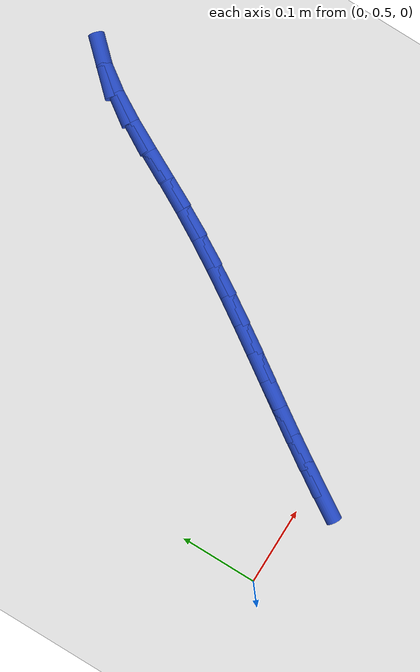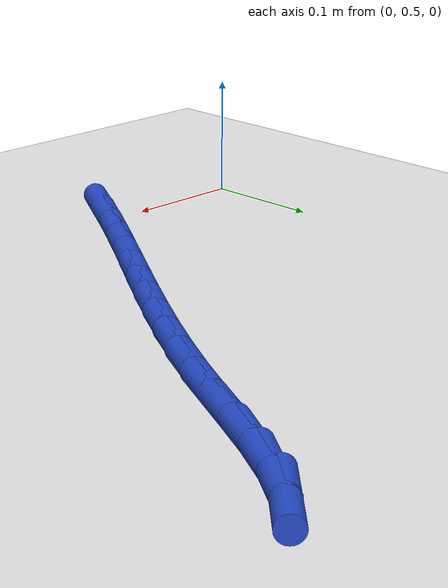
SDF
<sdf version="1.6">
 <world name="default">
  <model name="ground_plane">
   <static>1</static>
   <link name="link">
    <collision name="collision">
     <geometry><plane><normal>0 0 1</normal><size>100 100</size></plane></geometry>
     <surface><friction><ode><mu>100</mu><mu2>50</mu2></ode></friction></surface>
    </collision>
    <visual name="visual">
     <cast_shadows>0</cast_shadows>
     <geometry><plane><normal>0 0 1</normal><size>100 100</size></plane></geometry>
     <material>
      <script><uri>file://media/materials/scripts/gazebo.material</uri><name>Gazebo/WhiteGlow</name></script>
     </material>
    </visual>
   </link>
  </model>
  <model name="line">
   <link name="link_14">
    <pose>0.13681017573750584 0.49055797717945193 0.01 0 1.57 1.0149722399550534</pose>
    <collision name="collision">
     <geometry><cylinder><radius>0.01</radius><length>0.08</length></cylinder></geometry>
    </collision>
    <visual name="visual">
     <material>
      <script><name>Gazebo/Blue</name><uri>file://media/materials/scripts/gazebo.material</uri></script>
     </material>
     <geometry><cylinder><radius>0.01</radius><length>0.08</length></cylinder></geometry>
    </visual>
   </link>
   <link name="link_15">
    <pose>0.15590930065528466 0.521306114943742 0.01 0 1.57 0.9979018036385471</pose>
    <collision name="collision">
     <geometry><cylinder><radius>0.01</radius><length>0.08</length></cylinder></geometry>
    </collision>
    <visual name="visual">
     <material>
      <script><name>Gazebo/Blue</name><uri>file://media/materials/scripts/gazebo.material</uri></script>
     </material>
     <geometry><cylinder><radius>0.01</radius><length>0.08</length></cylinder></geometry>
    </visual>
   </link>
   <link name="link_16">
    <pose>0.1756698711714162 0.5519398151555116 0.01 0 1.57 0.9864046569775238</pose>
    <collision name="collision">
     <geometry><cylinder><radius>0.01</radius><length>0.08</length></cylinder></geometry>
    </collision>
    <visual name="visual">
     <material>
      <script><name>Gazebo/Blue</name><uri>file://media/materials/scripts/gazebo.material</uri></script>
     </material>
     <geometry><cylinder><radius>0.01</radius><length>0.08</length></cylinder></geometry>
    </visual>
   </link>
   <link name="link_17">
    <pose>0.19594684271918847 0.5825945305361981 0.01 0 1.57 0.9803812774716737</pose>
    <collision name="collision">
     <geometry><cylinder><radius>0.01</radius><length>0.08</length></cylinder></geometry>
    </collision>
    <visual name="visual">
     <material>
      <script><name>Gazebo/Blue</name><uri>file://media/materials/scripts/gazebo.material</uri></script>
     </material>
     <geometry><cylinder><radius>0.01</radius><length>0.08</length></cylinder></geometry>
    </visual>
   </link>
   <link name="link_18">
    <pose>0.21659517073188952 0.61340571380724 0.01 0 1.57 0.9797009127073677</pose>
    <collision name="collision">
     <geometry><cylinder><radius>0.01</radius><length>0.08</length></cylinder></geometry>
    </collision>
    <visual name="visual">
     <material>
      <script><name>Gazebo/Blue</name><uri>file://media/materials/scripts/gazebo.material</uri></script>
     </material>
     <geometry><cylinder><radius>0.01</radius><length>0.08</length></cylinder></geometry>
    </visual>
   </link>
   <link name="link_19">
    <pose>0.2374698106428074 0.6445088176900747 0.01 0 1.57 0.9842093128487828</pose>
    <collision name="collision">
     <geometry><cylinder><radius>0.01</radius><length>0.08</length></cylinder></geometry>
    </collision>
    <visual name="visual">
     <material>
      <script><name>Gazebo/Blue</name><uri>file://media/materials/scripts/gazebo.material</uri></script>
     </material>
     <geometry><cylinder><radius>0.01</radius><length>0.08</length></cylinder></geometry>
    </visual>
   </link>
   <link name="link_20">
    <pose>0.2584257178852303 0.6760392949061407 0.01 0 1.57 0.9937317985861548</pose>
    <collision name="collision">
     <geometry><cylinder><radius>0.01</radius><length>0.08</length></cylinder></geometry>
    </collision>
    <visual name="visual">
     <material>
      <script><name>Gazebo/Blue</name><uri>file://media/materials/scripts/gazebo.material</uri></script>
     </material>
     <geometry><cylinder><radius>0.01</radius><length>0.08</length></cylinder></geometry>
    </visual>
   </link>
   <link name="link_21">
    <pose>0.2793178478924462 0.7081325981768758 0.01 0 1.57 1.0080724723834482</pose>
    <collision name="collision">
     <geometry><cylinder><radius>0.01</radius><length>0.08</length></cylinder></geometry>
    </collision>
    <visual name="visual">
     <material>
      <script><name>Gazebo/Blue</name><uri>file://media/materials/scripts/gazebo.material</uri></script>
     </material>
     <geometry><cylinder><radius>0.01</radius><length>0.08</length></cylinder></geometry>
    </visual>
   </link>
   <link name="link_22">
    <pose>0.3000011560977432 0.7409241802237181 0.01 0 1.57 1.0270105432330627</pose>
    <collision name="collision">
     <geometry><cylinder><radius>0.01</radius><length>0.08</length></cylinder></geometry>
    </collision>
    <visual name="visual">
     <material>
      <script><name>Gazebo/Blue</name><uri>file://media/materials/scripts/gazebo.material</uri></script>
     </material>
     <geometry><cylinder><radius>0.01</radius><length>0.08</length></cylinder></geometry>
    </visual>
   </link>
   <link name="link_23">
    <pose>0.3203305979344093 0.7745494937681054 0.01 0 1.57 1.0502948557643872</pose>
    <collision name="collision">
     <geometry><cylinder><radius>0.01</radius><length>0.08</length></cylinder></geometry>
    </collision>
    <visual name="visual">
     <material>
      <script><name>Gazebo/Blue</name><uri>file://media/materials/scripts/gazebo.material</uri></script>
     </material>
     <geometry><cylinder><radius>0.01</radius><length>0.08</length></cylinder></geometry>
    </visual>
   </link>
   <link name="link_24">
    <pose>0.3401611288357326 0.8091439915314756 0.01 0 1.57 1.0776150927210633</pose>
    <collision name="collision">
     <geometry><cylinder><radius>0.01</radius><length>0.08</length></cylinder></geometry>
    </collision>
    <visual name="visual">
     <material>
      <script><name>Gazebo/Blue</name><uri>file://media/materials/scripts/gazebo.material</uri></script>
     </material>
     <geometry><cylinder><radius>0.01</radius><length>0.08</length></cylinder></geometry>
    </visual>
   </link>
   <link name="link_25">
    <pose>0.35934824108856933 0.8448421791879832 0.01 0 1.57 1.0989478587985846</pose>
    <collision name="collision">
     <geometry><cylinder><radius>0.01</radius><length>0.08</length></cylinder></geometry>
    </collision>
    <visual name="visual">
     <material>
      <script><name>Gazebo/Blue</name><uri>file://media/materials/scripts/gazebo.material</uri></script>
     </material>
     <geometry><cylinder><radius>0.01</radius><length>0.08</length></cylinder></geometry>
    </visual>
   </link>
   <link name="link_26">
    <pose>0.37798382966204236 0.8813615315279394 0.01 0 1.57 1.089783607153572</pose>
    <collision name="collision">
     <geometry><cylinder><radius>0.01</radius><length>0.08</length></cylinder></geometry>
    </collision>
    <visual name="visual">
     <material>
      <script><name>Gazebo/Blue</name><uri>file://media/materials/scripts/gazebo.material</uri></script>
     </material>
     <geometry><cylinder><radius>0.01</radius><length>0.08</length></cylinder></geometry>
    </visual>
   </link>
   <link name="link_27">
    <pose>0.3967661203142834 0.9173499133760711 0.01 0 1.57 1.0443293523876431</pose>
    <collision name="collision">
     <geometry><cylinder><radius>0.01</radius><length>0.08</length></cylinder></geometry>
    </collision>
    <visual name="visual">
     <material>
      <script><name>Gazebo/Blue</name><uri>file://media/materials/scripts/gazebo.material</uri></script>
     </material>
     <geometry><cylinder><radius>0.01</radius><length>0.08</length></cylinder></geometry>
    </visual>
   </link>
   <link name="link_28">
    <pose>0.4164891871219519 0.9512861064121658 0.01 0 1.57 0.9555760790746389</pose>
    <collision name="collision">
     <geometry><cylinder><radius>0.01</radius><length>0.08</length></cylinder></geometry>
    </collision>
    <visual name="visual">
     <material>
      <script><name>Gazebo/Blue</name><uri>file://media/materials/scripts/gazebo.material</uri></script>
     </material>
     <geometry><cylinder><radius>0.01</radius><length>0.08</length></cylinder></geometry>
    </visual>
   </link>
   <link name="link_29">
    <pose>0.4379471041617067 0.9816488923160097 0.01 0 1.57 0.8114062872159397</pose>
    <collision name="collision">
     <geometry><cylinder><radius>0.01</radius><length>0.08</length></cylinder></geometry>
    </collision>
    <visual name="visual">
     <material>
      <script><name>Gazebo/Blue</name><uri>file://media/materials/scripts/gazebo.material</uri></script>
     </material>
     <geometry><cylinder><radius>0.01</radius><length>0.08</length></cylinder></geometry>
    </visual>
   </link>
  </model>
 </world>
</sdf>
